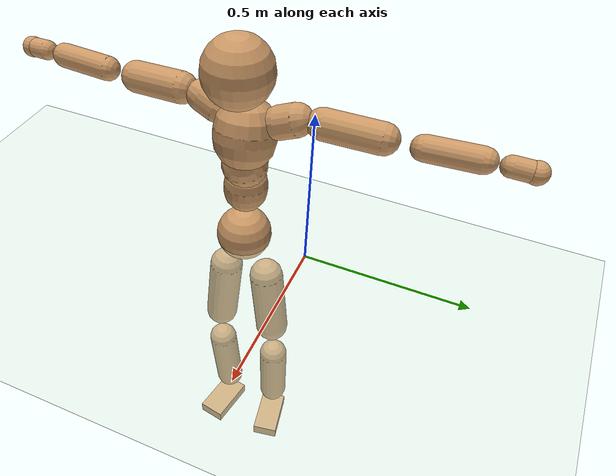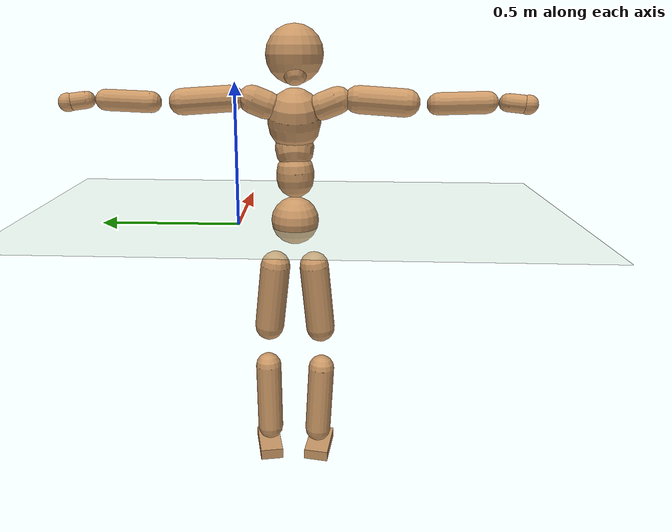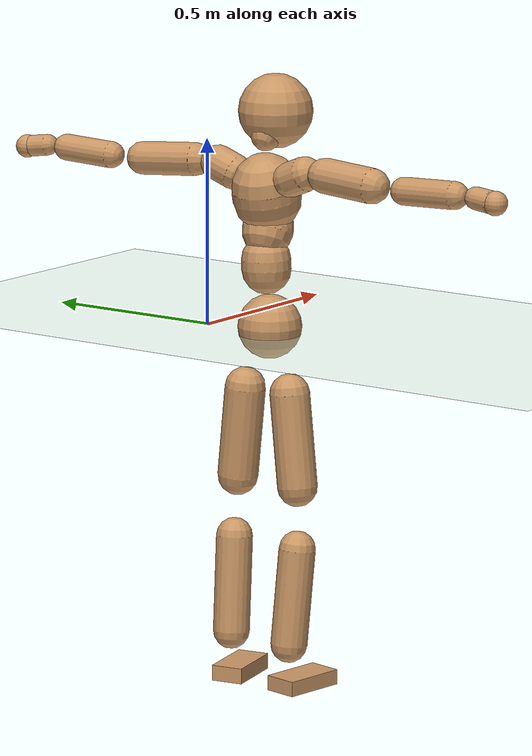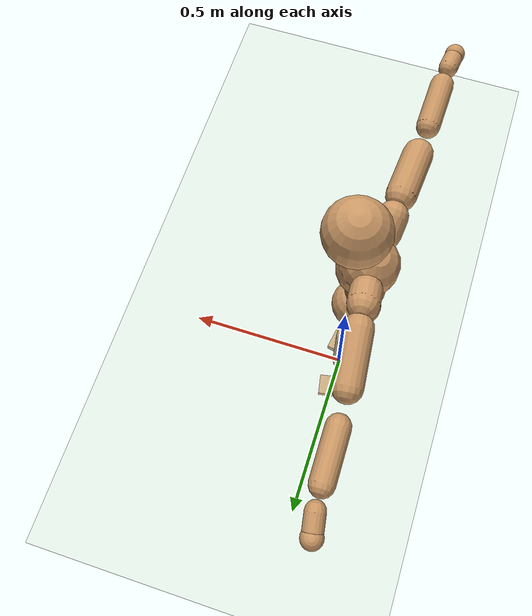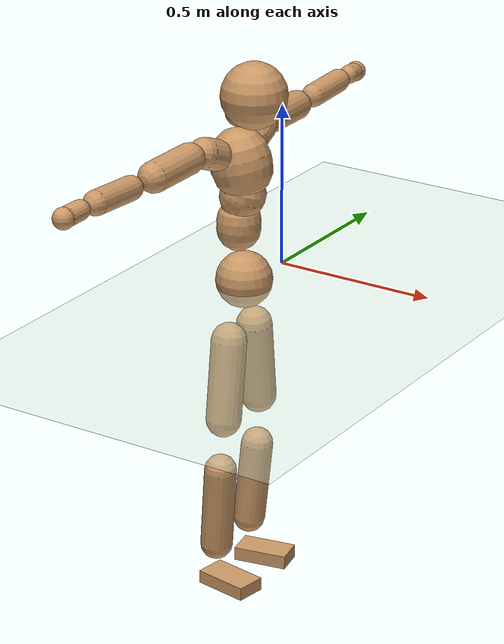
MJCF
<mujoco model="humanoid">
  <compiler coordinate="local" angle="radian"/>
  <default>
    <joint damping="0.0" armature="0.01" stiffness="0.0" limited="true"/>
    <geom conaffinity="1" condim="3" contype="7" margin="0.001" rgba="0.8 0.6 .4 1"/>
  </default>
  <asset>
    <texture type="skybox" builtin="gradient" rgb1=".4 .5 .6" rgb2="0 0 0" width="100" height="100"/>
    <texture builtin="flat" height="1278" mark="cross" markrgb="1 1 1" name="texgeom" random="0.01" rgb1="0.8 0.6 0.4" rgb2="0.8 0.6 0.4" type="cube" width="127"/>
    <texture builtin="checker" height="100" name="texplane" rgb1="0 0 0" rgb2="0.8 0.8 0.8" type="2d" width="100"/>
    <material name="MatPlane" reflectance="0.5" shininess="1" specular="1" texrepeat="60 60" texture="texplane"/>
    <material name="geom" texture="texgeom" texuniform="true"/>
  </asset>
  <worldbody>
    <light cutoff="100" diffuse="1 1 1" dir="-0 0 -1.3" directional="true" exponent="1" pos="0 0 1.3" specular=".1 .1 .1"/>
    <geom conaffinity="1" condim="3" name="floor" pos="0 0 0" rgba="0.8 0.9 0.8 1" size="100 100 .2" type="plane" material="MatPlane"/>
    <body name="Pelvis" pos="-0.0013 -0.2049 0.0198">
      <freejoint name="Pelvis"/>
      <geom type="sphere" contype="1" conaffinity="1" density="500" size="0.0853" pos="0.0000 0.0000 0.0000" name="Pelvis"/>
      <body name="L_Hip" pos="-0.0114 0.0638 -0.0899">
        <joint name="L_Hip_x" type="hinge" pos="0 0 0" axis="1 0 0" stiffness="800" damping="80" armature="0.02" range="-180.0000 180.0000"/>
        <joint name="L_Hip_y" type="hinge" pos="0 0 0" axis="0 1 0" stiffness="800" damping="80" armature="0.02" range="-180.0000 180.0000"/>
        <joint name="L_Hip_z" type="hinge" pos="0 0 0" axis="0 0 1" stiffness="800" damping="80" armature="0.02" range="-180.0000 180.0000"/>
        <geom type="capsule" contype="1" conaffinity="1" density="500" fromto="-0.0003 0.0079 -0.0810 -0.0011 0.0318 -0.3239" size="0.0544" name="L_Hip"/>
        <body name="L_Knee" pos="-0.0014 0.0397 -0.4048">
          <joint name="L_Knee_x" type="hinge" pos="0 0 0" axis="1 0 0" stiffness="800" damping="80" armature="0.02" range="-180.0000 180.0000"/>
          <joint name="L_Knee_y" type="hinge" pos="0 0 0" axis="0 1 0" stiffness="800" damping="80" armature="0.02" range="-180.0000 180.0000"/>
          <joint name="L_Knee_z" type="hinge" pos="0 0 0" axis="0 0 1" stiffness="800" damping="80" armature="0.02" range="-180.0000 180.0000"/>
          <geom type="capsule" contype="1" conaffinity="1" density="500" fromto="-0.0081 -0.0025 -0.0858 -0.0325 -0.0099 -0.3430" size="0.0488" name="L_Knee"/>
          <body name="L_Ankle" pos="-0.0406 -0.0123 -0.4288">
            <joint name="L_Ankle_x" type="hinge" pos="0 0 0" axis="1 0 0" stiffness="800" damping="80" armature="0.02" range="-180.0000 180.0000"/>
            <joint name="L_Ankle_y" type="hinge" pos="0 0 0" axis="0 1 0" stiffness="800" damping="80" armature="0.02" range="-180.0000 180.0000"/>
            <joint name="L_Ankle_z" type="hinge" pos="0 0 0" axis="0 0 1" stiffness="800" damping="80" armature="0.02" range="-180.0000 180.0000"/>
            <geom type="box" contype="1" conaffinity="1" density="500" pos="0.0596 0.0113 -0.0300" size="0.083 0.0434 0.0211" quat="0.9956 0.0000 0.0000 0.0932" name="L_Ankle"/>
            <body name="L_Toe" pos="0.1191 0.0225 -0.0601">
              <joint name="L_Toe_x" type="hinge" pos="0 0 0" axis="1 0 0" stiffness="500" damping="50" armature="0.02" range="-180.0000 180.0000"/>
              <joint name="L_Toe_y" type="hinge" pos="0 0 0" axis="0 1 0" stiffness="500" damping="50" armature="0.02" range="-180.0000 180.0000"/>
              <joint name="L_Toe_z" type="hinge" pos="0 0 0" axis="0 0 1" stiffness="500" damping="50" armature="0.02" range="-180.0000 180.0000"/>
              <geom type="box" contype="1" conaffinity="1" density="500" pos="0.0000 0.0000 0.0302" size="0.0009 0.0022 0.0011" quat="0.9950 0.0000 0.0000 0.0997" name="L_Toe"/>
            </body>
          </body>
        </body>
      </body>
      <body name="R_Hip" pos="-0.007 -0.0615 -0.0889">
        <joint name="R_Hip_x" type="hinge" pos="0 0 0" axis="1 0 0" stiffness="800" damping="80" armature="0.02" range="-180.0000 180.0000"/>
        <joint name="R_Hip_y" type="hinge" pos="0 0 0" axis="0 1 0" stiffness="800" damping="80" armature="0.02" range="-180.0000 180.0000"/>
        <joint name="R_Hip_z" type="hinge" pos="0 0 0" axis="0 0 1" stiffness="800" damping="80" armature="0.02" range="-180.0000 180.0000"/>
        <geom type="capsule" contype="1" conaffinity="1" density="500" fromto="-0.0008 -0.0091 -0.0826 -0.0033 -0.0364 -0.3303" size="0.0535" name="R_Hip"/>
        <body name="R_Knee" pos="-0.0041 -0.0455 -0.4128">
          <joint name="R_Knee_x" type="hinge" pos="0 0 0" axis="1 0 0" stiffness="800" damping="80" armature="0.02" range="-180.0000 180.0000"/>
          <joint name="R_Knee_y" type="hinge" pos="0 0 0" axis="0 1 0" stiffness="800" damping="80" armature="0.02" range="-180.0000 180.0000"/>
          <joint name="R_Knee_z" type="hinge" pos="0 0 0" axis="0 0 1" stiffness="800" damping="80" armature="0.02" range="-180.0000 180.0000"/>
          <geom type="capsule" contype="1" conaffinity="1" density="500" fromto="-0.0076 0.0033 -0.0858 -0.0304 0.0131 -0.3431" size="0.0493" name="R_Knee"/>
          <body name="R_Ankle" pos="-0.038 0.0164 -0.4288">
            <joint name="R_Ankle_x" type="hinge" pos="0 0 0" axis="1 0 0" stiffness="800" damping="80" armature="0.02" range="-180.0000 180.0000"/>
            <joint name="R_Ankle_y" type="hinge" pos="0 0 0" axis="0 1 0" stiffness="800" damping="80" armature="0.02" range="-180.0000 180.0000"/>
            <joint name="R_Ankle_z" type="hinge" pos="0 0 0" axis="0 0 1" stiffness="800" damping="80" armature="0.02" range="-180.0000 180.0000"/>
            <geom type="box" contype="1" conaffinity="1" density="500" pos="0.0611 -0.0099 -0.0248" size="0.0853 0.046 0.0202" quat="0.9968 0.0000 0.0000 -0.0805" name="R_Ankle"/>
            <body name="R_Toe" pos="0.1223 -0.0199 -0.0497">
              <joint name="R_Toe_x" type="hinge" pos="0 0 0" axis="1 0 0" stiffness="500" damping="50" armature="0.02" range="-180.0000 180.0000"/>
              <joint name="R_Toe_y" type="hinge" pos="0 0 0" axis="0 1 0" stiffness="500" damping="50" armature="0.02" range="-180.0000 180.0000"/>
              <joint name="R_Toe_z" type="hinge" pos="0 0 0" axis="0 0 1" stiffness="500" damping="50" armature="0.02" range="-180.0000 180.0000"/>
              <geom type="box" contype="1" conaffinity="1" density="500" pos="0.0000 0.0000 0.0279" size="0.0008 0.0022 0.0012" quat="0.9975 0.0000 0.0000 -0.0714" name="R_Toe"/>
            </body>
          </body>
        </body>
      </body>
      <body name="Torso" pos="-0.0178 -0.0034 0.1029">
        <joint name="Torso_x" type="hinge" pos="0 0 0" axis="1 0 0" stiffness="1000" damping="100" armature="0.02" range="-180.0000 180.0000"/>
        <joint name="Torso_y" type="hinge" pos="0 0 0" axis="0 1 0" stiffness="1000" damping="100" armature="0.02" range="-180.0000 180.0000"/>
        <joint name="Torso_z" type="hinge" pos="0 0 0" axis="0 0 1" stiffness="1000" damping="100" armature="0.02" range="-180.0000 180.0000"/>
        <geom type="capsule" contype="1" conaffinity="1" density="500" fromto="0.0003 0.0028 0.0795 0.0002 0.0018 0.0530" size="0.0656" name="Torso"/>
        <body name="Spine" pos="0.0005 0.0046 0.1326">
          <joint name="Spine_x" type="hinge" pos="0 0 0" axis="1 0 0" stiffness="1000" damping="100" armature="0.02" range="-180.0000 180.0000"/>
          <joint name="Spine_y" type="hinge" pos="0 0 0" axis="0 1 0" stiffness="1000" damping="100" armature="0.02" range="-180.0000 180.0000"/>
          <joint name="Spine_z" type="hinge" pos="0 0 0" axis="0 0 1" stiffness="1000" damping="100" armature="0.02" range="-180.0000 180.0000"/>
          <geom type="capsule" contype="1" conaffinity="1" density="500" fromto="0.0142 0.0013 0.0305 0.0095 0.0008 0.0203" size="0.0676" name="Spine"/>
          <body name="Chest" pos="0.0237 0.0021 0.0508">
            <joint name="Chest_x" type="hinge" pos="0 0 0" axis="1 0 0" stiffness="1000" damping="100" armature="0.02" range="-180.0000 180.0000"/>
            <joint name="Chest_y" type="hinge" pos="0 0 0" axis="0 1 0" stiffness="1000" damping="100" armature="0.02" range="-180.0000 180.0000"/>
            <joint name="Chest_z" type="hinge" pos="0 0 0" axis="0 0 1" stiffness="1000" damping="100" armature="0.02" range="-180.0000 180.0000"/>
            <geom type="capsule" contype="1" conaffinity="1" density="500" fromto="-0.0217 -0.0012 0.0869 -0.0145 -0.0008 0.0580" size="0.091" name="Chest"/>
            <body name="Neck" pos="-0.0343 -0.0038 0.2085">
              <joint name="Neck_x" type="hinge" pos="0 0 0" axis="1 0 0" stiffness="500" damping="50" armature="0.02" range="-180.0000 180.0000"/>
              <joint name="Neck_y" type="hinge" pos="0 0 0" axis="0 1 0" stiffness="500" damping="50" armature="0.02" range="-180.0000 180.0000"/>
              <joint name="Neck_z" type="hinge" pos="0 0 0" axis="0 0 1" stiffness="500" damping="50" armature="0.02" range="-180.0000 180.0000"/>
              <geom type="capsule" contype="1" conaffinity="1" density="500" fromto="0.0120 0.0011 0.0148 0.0481 0.0044 0.0594" size="0.0405" name="Neck"/>
              <body name="Head" pos="0.0601 0.0055 0.0742">
                <joint name="Head_x" type="hinge" pos="0 0 0" axis="1 0 0" stiffness="500" damping="50" armature="0.02" range="-180.0000 180.0000"/>
                <joint name="Head_y" type="hinge" pos="0 0 0" axis="0 1 0" stiffness="500" damping="50" armature="0.02" range="-180.0000 180.0000"/>
                <joint name="Head_z" type="hinge" pos="0 0 0" axis="0 0 1" stiffness="500" damping="50" armature="0.02" range="-180.0000 180.0000"/>
                <geom type="sphere" contype="1" conaffinity="1" density="500" size="0.0985" pos="0.0000 0.0000 0.0000" name="Head"/>
              </body>
            </body>
            <body name="L_Thorax" pos="-0.0348 0.0741 0.1144">
              <joint name="L_Thorax_x" type="hinge" pos="0 0 0" axis="1 0 0" stiffness="500" damping="50" armature="0.02" range="-180.0000 180.0000"/>
              <joint name="L_Thorax_y" type="hinge" pos="0 0 0" axis="0 1 0" stiffness="500" damping="50" armature="0.02" range="-180.0000 180.0000"/>
              <joint name="L_Thorax_z" type="hinge" pos="0 0 0" axis="0 0 1" stiffness="500" damping="50" armature="0.02" range="-180.0000 180.0000"/>
              <geom type="capsule" contype="1" conaffinity="1" density="500" fromto="-0.0012 0.0163 0.0065 -0.0050 0.0653 0.0262" size="0.0474" name="L_Thorax"/>
              <body name="L_Shoulder" pos="-0.0062 0.0816 0.0327">
                <joint name="L_Shoulder_x" type="hinge" pos="0 0 0" axis="1 0 0" stiffness="500" damping="50" armature="0.02" range="-720.0000 720.0000"/>
                <joint name="L_Shoulder_y" type="hinge" pos="0 0 0" axis="0 1 0" stiffness="500" damping="50" armature="0.02" range="-720.0000 720.0000"/>
                <joint name="L_Shoulder_z" type="hinge" pos="0 0 0" axis="0 0 1" stiffness="500" damping="50" armature="0.02" range="-720.0000 720.0000"/>
                <geom type="capsule" contype="1" conaffinity="1" density="500" fromto="-0.0055 0.0537 -0.0033 -0.0222 0.2147 -0.0132" size="0.0442" name="L_Shoulder"/>
                <body name="L_Elbow" pos="-0.0277 0.2684 -0.0165">
                  <joint name="L_Elbow_x" type="hinge" pos="0 0 0" axis="1 0 0" stiffness="500" damping="50" armature="0.02" range="-720.0000 720.0000"/>
                  <joint name="L_Elbow_y" type="hinge" pos="0 0 0" axis="0 1 0" stiffness="500" damping="50" armature="0.02" range="-720.0000 720.0000"/>
                  <joint name="L_Elbow_z" type="hinge" pos="0 0 0" axis="0 0 1" stiffness="500" damping="50" armature="0.02" range="-720.0000 720.0000"/>
                  <geom type="capsule" contype="1" conaffinity="1" density="500" fromto="-0.0006 0.0497 0.0022 -0.0023 0.1990 0.0087" size="0.0355" name="L_Elbow"/>
                  <body name="L_Wrist" pos="-0.0028 0.2487 0.0109">
                    <joint name="L_Wrist_x" type="hinge" pos="0 0 0" axis="1 0 0" stiffness="300" damping="30" armature="0.02" range="-180.0000 180.0000"/>
                    <joint name="L_Wrist_y" type="hinge" pos="0 0 0" axis="0 1 0" stiffness="300" damping="30" armature="0.02" range="-180.0000 180.0000"/>
                    <joint name="L_Wrist_z" type="hinge" pos="0 0 0" axis="0 0 1" stiffness="300" damping="30" armature="0.02" range="-180.0000 180.0000"/>
                    <geom type="capsule" contype="1" conaffinity="1" density="500" fromto="-0.0026 0.0154 -0.0019 -0.0105 0.0616 -0.0076" size="0.0286" name="L_Wrist"/>
                    <body name="L_Hand" pos="-0.0131 0.077 -0.0095">
                      <joint name="L_Hand_x" type="hinge" pos="0 0 0" axis="1 0 0" stiffness="300" damping="30" armature="0.02" range="-180.0000 180.0000"/>
                      <joint name="L_Hand_y" type="hinge" pos="0 0 0" axis="0 1 0" stiffness="300" damping="30" armature="0.02" range="-180.0000 180.0000"/>
                      <joint name="L_Hand_z" type="hinge" pos="0 0 0" axis="0 0 1" stiffness="300" damping="30" armature="0.02" range="-180.0000 180.0000"/>
                      <geom type="sphere" contype="1" conaffinity="1" density="500" size="0.0310" pos="0.0000 0.0000 0.0000" name="L_Hand"/>
                    </body>
                  </body>
                </body>
              </body>
            </body>
            <body name="R_Thorax" pos="-0.0395 -0.0764 0.1118">
              <joint name="R_Thorax_x" type="hinge" pos="0 0 0" axis="1 0 0" stiffness="500" damping="50" armature="0.02" range="-180.0000 180.0000"/>
              <joint name="R_Thorax_y" type="hinge" pos="0 0 0" axis="0 1 0" stiffness="500" damping="50" armature="0.02" range="-180.0000 180.0000"/>
              <joint name="R_Thorax_z" type="hinge" pos="0 0 0" axis="0 0 1" stiffness="500" damping="50" armature="0.02" range="-180.0000 180.0000"/>
              <geom type="capsule" contype="1" conaffinity="1" density="500" fromto="-0.0019 -0.0170 0.0068 -0.0076 -0.0679 0.0271" size="0.0464" name="R_Thorax"/>
              <body name="R_Shoulder" pos="-0.0095 -0.0849 0.0339">
                <joint name="R_Shoulder_x" type="hinge" pos="0 0 0" axis="1 0 0" stiffness="500" damping="50" armature="0.02" range="-720.0000 720.0000"/>
                <joint name="R_Shoulder_y" type="hinge" pos="0 0 0" axis="0 1 0" stiffness="500" damping="50" armature="0.02" range="-720.0000 720.0000"/>
                <joint name="R_Shoulder_z" type="hinge" pos="0 0 0" axis="0 0 1" stiffness="500" damping="50" armature="0.02" range="-720.0000 720.0000"/>
                <geom type="capsule" contype="1" conaffinity="1" density="500" fromto="-0.0041 -0.0516 -0.0032 -0.0165 -0.2066 -0.0128" size="0.0462" name="R_Shoulder"/>
                <body name="R_Elbow" pos="-0.0206 -0.2582 -0.016">
                  <joint name="R_Elbow_x" type="hinge" pos="0 0 0" axis="1 0 0" stiffness="500" damping="50" armature="0.02" range="-720.0000 720.0000"/>
                  <joint name="R_Elbow_y" type="hinge" pos="0 0 0" axis="0 1 0" stiffness="500" damping="50" armature="0.02" range="-720.0000 720.0000"/>
                  <joint name="R_Elbow_z" type="hinge" pos="0 0 0" axis="0 0 1" stiffness="500" damping="50" armature="0.02" range="-720.0000 720.0000"/>
                  <geom type="capsule" contype="1" conaffinity="1" density="500" fromto="-0.0015 -0.0516 0.0018 -0.0059 -0.2065 0.0071" size="0.0362" name="R_Elbow"/>
                  <body name="R_Wrist" pos="-0.0074 -0.2581 0.0089">
                    <joint name="R_Wrist_x" type="hinge" pos="0 0 0" axis="1 0 0" stiffness="300" damping="30" armature="0.02" range="-180.0000 180.0000"/>
                    <joint name="R_Wrist_y" type="hinge" pos="0 0 0" axis="0 1 0" stiffness="300" damping="30" armature="0.02" range="-180.0000 180.0000"/>
                    <joint name="R_Wrist_z" type="hinge" pos="0 0 0" axis="0 0 1" stiffness="300" damping="30" armature="0.02" range="-180.0000 180.0000"/>
                    <geom type="capsule" contype="1" conaffinity="1" density="500" fromto="-0.0020 -0.0156 -0.0014 -0.0079 -0.0623 -0.0056" size="0.0295" name="R_Wrist"/>
                    <body name="R_Hand" pos="-0.0099 -0.0779 -0.007">
                      <joint name="R_Hand_x" type="hinge" pos="0 0 0" axis="1 0 0" stiffness="300" damping="30" armature="0.02" range="-180.0000 180.0000"/>
                      <joint name="R_Hand_y" type="hinge" pos="0 0 0" axis="0 1 0" stiffness="300" damping="30" armature="0.02" range="-180.0000 180.0000"/>
                      <joint name="R_Hand_z" type="hinge" pos="0 0 0" axis="0 0 1" stiffness="300" damping="30" armature="0.02" range="-180.0000 180.0000"/>
                      <geom type="sphere" contype="1" conaffinity="1" density="500" size="0.0313" pos="0.0000 0.0000 0.0000" name="R_Hand"/>
                    </body>
                  </body>
                </body>
              </body>
            </body>
          </body>
        </body>
      </body>
    </body>
  </worldbody>
  <actuator>
    <motor name="L_Hip_x" joint="L_Hip_x" gear="500"/>
    <motor name="L_Hip_y" joint="L_Hip_y" gear="500"/>
    <motor name="L_Hip_z" joint="L_Hip_z" gear="500"/>
    <motor name="L_Knee_x" joint="L_Knee_x" gear="500"/>
    <motor name="L_Knee_y" joint="L_Knee_y" gear="500"/>
    <motor name="L_Knee_z" joint="L_Knee_z" gear="500"/>
    <motor name="L_Ankle_x" joint="L_Ankle_x" gear="500"/>
    <motor name="L_Ankle_y" joint="L_Ankle_y" gear="500"/>
    <motor name="L_Ankle_z" joint="L_Ankle_z" gear="500"/>
    <motor name="L_Toe_x" joint="L_Toe_x" gear="500"/>
    <motor name="L_Toe_y" joint="L_Toe_y" gear="500"/>
    <motor name="L_Toe_z" joint="L_Toe_z" gear="500"/>
    <motor name="R_Hip_x" joint="R_Hip_x" gear="500"/>
    <motor name="R_Hip_y" joint="R_Hip_y" gear="500"/>
    <motor name="R_Hip_z" joint="R_Hip_z" gear="500"/>
    <motor name="R_Knee_x" joint="R_Knee_x" gear="500"/>
    <motor name="R_Knee_y" joint="R_Knee_y" gear="500"/>
    <motor name="R_Knee_z" joint="R_Knee_z" gear="500"/>
    <motor name="R_Ankle_x" joint="R_Ankle_x" gear="500"/>
    <motor name="R_Ankle_y" joint="R_Ankle_y" gear="500"/>
    <motor name="R_Ankle_z" joint="R_Ankle_z" gear="500"/>
    <motor name="R_Toe_x" joint="R_Toe_x" gear="500"/>
    <motor name="R_Toe_y" joint="R_Toe_y" gear="500"/>
    <motor name="R_Toe_z" joint="R_Toe_z" gear="500"/>
    <motor name="Torso_x" joint="Torso_x" gear="500"/>
    <motor name="Torso_y" joint="Torso_y" gear="500"/>
    <motor name="Torso_z" joint="Torso_z" gear="500"/>
    <motor name="Spine_x" joint="Spine_x" gear="500"/>
    <motor name="Spine_y" joint="Spine_y" gear="500"/>
    <motor name="Spine_z" joint="Spine_z" gear="500"/>
    <motor name="Chest_x" joint="Chest_x" gear="500"/>
    <motor name="Chest_y" joint="Chest_y" gear="500"/>
    <motor name="Chest_z" joint="Chest_z" gear="500"/>
    <motor name="Neck_x" joint="Neck_x" gear="500"/>
    <motor name="Neck_y" joint="Neck_y" gear="500"/>
    <motor name="Neck_z" joint="Neck_z" gear="500"/>
    <motor name="Head_x" joint="Head_x" gear="500"/>
    <motor name="Head_y" joint="Head_y" gear="500"/>
    <motor name="Head_z" joint="Head_z" gear="500"/>
    <motor name="L_Thorax_x" joint="L_Thorax_x" gear="500"/>
    <motor name="L_Thorax_y" joint="L_Thorax_y" gear="500"/>
    <motor name="L_Thorax_z" joint="L_Thorax_z" gear="500"/>
    <motor name="L_Shoulder_x" joint="L_Shoulder_x" gear="500"/>
    <motor name="L_Shoulder_y" joint="L_Shoulder_y" gear="500"/>
    <motor name="L_Shoulder_z" joint="L_Shoulder_z" gear="500"/>
    <motor name="L_Elbow_x" joint="L_Elbow_x" gear="500"/>
    <motor name="L_Elbow_y" joint="L_Elbow_y" gear="500"/>
    <motor name="L_Elbow_z" joint="L_Elbow_z" gear="500"/>
    <motor name="L_Wrist_x" joint="L_Wrist_x" gear="500"/>
    <motor name="L_Wrist_y" joint="L_Wrist_y" gear="500"/>
    <motor name="L_Wrist_z" joint="L_Wrist_z" gear="500"/>
    <motor name="L_Hand_x" joint="L_Hand_x" gear="500"/>
    <motor name="L_Hand_y" joint="L_Hand_y" gear="500"/>
    <motor name="L_Hand_z" joint="L_Hand_z" gear="500"/>
    <motor name="R_Thorax_x" joint="R_Thorax_x" gear="500"/>
    <motor name="R_Thorax_y" joint="R_Thorax_y" gear="500"/>
    <motor name="R_Thorax_z" joint="R_Thorax_z" gear="500"/>
    <motor name="R_Shoulder_x" joint="R_Shoulder_x" gear="500"/>
    <motor name="R_Shoulder_y" joint="R_Shoulder_y" gear="500"/>
    <motor name="R_Shoulder_z" joint="R_Shoulder_z" gear="500"/>
    <motor name="R_Elbow_x" joint="R_Elbow_x" gear="500"/>
    <motor name="R_Elbow_y" joint="R_Elbow_y" gear="500"/>
    <motor name="R_Elbow_z" joint="R_Elbow_z" gear="500"/>
    <motor name="R_Wrist_x" joint="R_Wrist_x" gear="500"/>
    <motor name="R_Wrist_y" joint="R_Wrist_y" gear="500"/>
    <motor name="R_Wrist_z" joint="R_Wrist_z" gear="500"/>
    <motor name="R_Hand_x" joint="R_Hand_x" gear="500"/>
    <motor name="R_Hand_y" joint="R_Hand_y" gear="500"/>
    <motor name="R_Hand_z" joint="R_Hand_z" gear="500"/>
  </actuator>
  <contact>
    <exclude body1="Torso" body2="Chest"/>
    <exclude body1="Head" body2="Chest"/>
    <exclude body1="R_Knee" body2="R_Toe"/>
    <exclude body1="R_Knee" body2="L_Ankle"/>
    <exclude body1="R_Knee" body2="L_Toe"/>
    <exclude body1="L_Knee" body2="L_Toe"/>
    <exclude body1="L_Knee" body2="R_Ankle"/>
    <exclude body1="L_Knee" body2="R_Toe"/>
    <exclude body1="L_Shoulder" body2="Chest"/>
    <exclude body1="R_Shoulder" body2="Chest"/>
  </contact>
  <sensor/>
  <size njmax="700" nconmax="700"/>
</mujoco>
